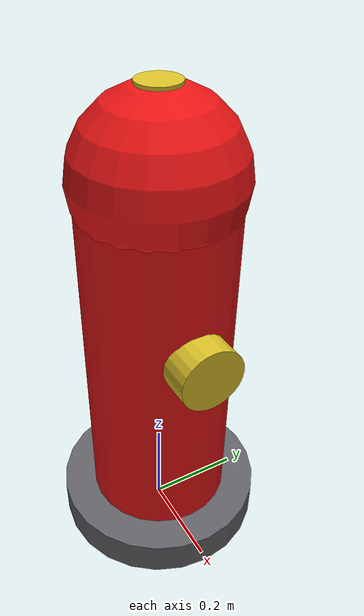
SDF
<?xml version="1.0" ?>
<sdf version="1.8">
  <model name="fire_hydrant">
    <static>true</static>
    <link name="hydrant_link">

      <!-- 物理碰撞剛體 (圓柱體) -->
      <collision name="hydrant_col">
        <pose>0 0 0.42 0 0 0</pose>
        <geometry><cylinder><radius>0.18</radius><length>0.84</length></cylinder></geometry>
      </collision>

      <!-- 視覺：消防栓主柱體 (Taiwan Safety Red High-gloss Enamel) -->
      <visual name="body">
        <pose>0 0 0.4 0 0 0</pose>
        <geometry><cylinder><radius>0.15</radius><length>0.8</length></cylinder></geometry>
        <material>
          <ambient>0.85 0.05 0.05 1</ambient>
          <diffuse>0.92 0.08 0.08 1</diffuse>
        </material>
      </visual>

      <!-- 視覺：頂部圓頂蓋 (Dome Cap) -->
      <visual name="cap">
        <pose>0 0 0.82 0 0 0</pose>
        <geometry><sphere><radius>0.16</radius></sphere></geometry>
        <material><ambient>0.85 0.05 0.05 1</ambient><diffuse>0.92 0.08 0.08 1</diffuse></material>
      </visual>

      <!-- 視覺：頂部五角開關操作螺母 (Pentagonal Operating Nut) -->
      <visual name="operating_nut">
        <pose>0 0 0.94 0 0 0</pose>
        <geometry><cylinder><radius>0.04</radius><length>0.08</length></cylinder></geometry>
        <material><ambient>0.75 0.65 0.1 1</ambient><diffuse>0.85 0.75 0.15 1</diffuse></material>
      </visual>

      <!-- 視覺：雙向出水噴嘴 (Dual Brass Discharge Nozzles with Chains) -->
      <visual name="nozzle_l">
        <pose>-0.12 0 0.52 0 1.5708 0</pose>
        <geometry><cylinder><radius>0.065</radius><length>0.16</length></cylinder></geometry>
        <material><ambient>0.75 0.65 0.1 1</ambient><diffuse>0.85 0.75 0.15 1</diffuse></material>
      </visual>
      <visual name="nozzle_r">
        <pose>0.12 0 0.52 0 1.5708 0</pose>
        <geometry><cylinder><radius>0.065</radius><length>0.16</length></cylinder></geometry>
        <material><ambient>0.75 0.65 0.1 1</ambient><diffuse>0.85 0.75 0.15 1</diffuse></material>
      </visual>

      <!-- 視覺：地面法蘭底盤 (Flange Ring) -->
      <visual name="flange">
        <pose>0 0 0.04 0 0 0</pose>
        <geometry><cylinder><radius>0.22</radius><length>0.08</length></cylinder></geometry>
        <material><ambient>0.3 0.3 0.32 1</ambient><diffuse>0.38 0.38 0.4 1</diffuse></material>
      </visual>
    </link>
  </model>
</sdf>
